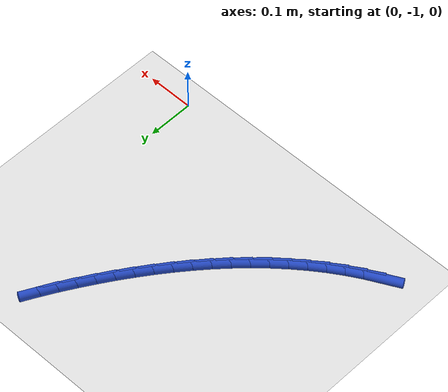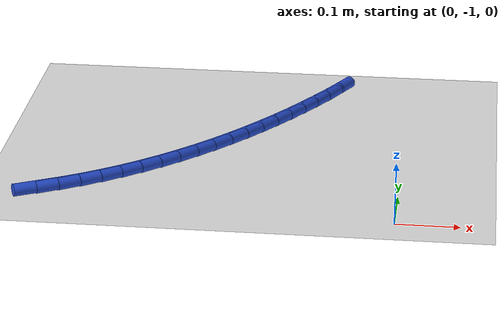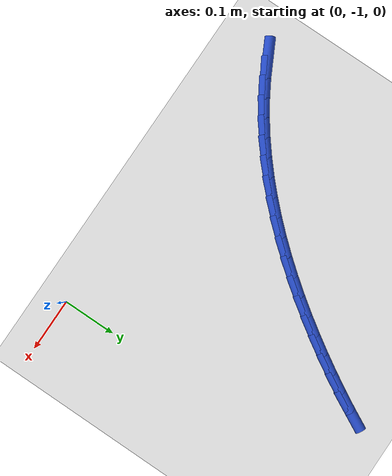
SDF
<sdf version="1.6">
 <world name="default">
  <model name="ground_plane">
   <static>1</static>
   <link name="link">
    <collision name="collision">
     <geometry><plane><normal>0 0 1</normal><size>100 100</size></plane></geometry>
     <surface><friction><ode><mu>100</mu><mu2>50</mu2></ode></friction></surface>
    </collision>
    <visual name="visual">
     <cast_shadows>0</cast_shadows>
     <geometry><plane><normal>0 0 1</normal><size>100 100</size></plane></geometry>
     <material>
      <script><uri>file://media/materials/scripts/gazebo.material</uri><name>Gazebo/WhiteGlow</name></script>
     </material>
    </visual>
   </link>
  </model>
  <model name="line">
   <link name="link_188">
    <pose>-0.5614007089672136 -0.9467634812784337 0.01 0 1.57 0.4791229240178376</pose>
    <collision name="collision">
     <geometry><cylinder><radius>0.01</radius><length>0.08</length></cylinder></geometry>
    </collision>
    <visual name="visual">
     <material>
      <script><name>Gazebo/Blue</name><uri>file://media/materials/scripts/gazebo.material</uri></script>
     </material>
     <geometry><cylinder><radius>0.01</radius><length>0.08</length></cylinder></geometry>
    </visual>
   </link>
   <link name="link_189">
    <pose>-0.529844276713611 -0.93037002334423 0.01 0 1.57 0.5312414319965021</pose>
    <collision name="collision">
     <geometry><cylinder><radius>0.01</radius><length>0.08</length></cylinder></geometry>
    </collision>
    <visual name="visual">
     <material>
      <script><name>Gazebo/Blue</name><uri>file://media/materials/scripts/gazebo.material</uri></script>
     </material>
     <geometry><cylinder><radius>0.01</radius><length>0.08</length></cylinder></geometry>
    </visual>
   </link>
   <link name="link_190">
    <pose>-0.49918736105033834 -0.9123564537605487 0.01 0 1.57 0.5809229124276968</pose>
    <collision name="collision">
     <geometry><cylinder><radius>0.01</radius><length>0.08</length></cylinder></geometry>
    </collision>
    <visual name="visual">
     <material>
      <script><name>Gazebo/Blue</name><uri>file://media/materials/scripts/gazebo.material</uri></script>
     </material>
     <geometry><cylinder><radius>0.01</radius><length>0.08</length></cylinder></geometry>
    </visual>
   </link>
   <link name="link_191">
    <pose>-0.46942108631630164 -0.8928152421919731 0.01 0 1.57 0.6281040927570009</pose>
    <collision name="collision">
     <geometry><cylinder><radius>0.01</radius><length>0.08</length></cylinder></geometry>
    </collision>
    <visual name="visual">
     <material>
      <script><name>Gazebo/Blue</name><uri>file://media/materials/scripts/gazebo.material</uri></script>
     </material>
     <geometry><cylinder><radius>0.01</radius><length>0.08</length></cylinder></geometry>
    </visual>
   </link>
   <link name="link_192">
    <pose>-0.44053656959304444 -0.8718388744110629 0.01 0 1.57 0.6727727468104069</pose>
    <collision name="collision">
     <geometry><cylinder><radius>0.01</radius><length>0.08</length></cylinder></geometry>
    </collision>
    <visual name="visual">
     <material>
      <script><name>Gazebo/Blue</name><uri>file://media/materials/scripts/gazebo.material</uri></script>
     </material>
     <geometry><cylinder><radius>0.01</radius><length>0.08</length></cylinder></geometry>
    </visual>
   </link>
   <link name="link_193">
    <pose>-0.4125249279621109 -0.8495198361903792 0.01 0 1.57 0.7149579737313152</pose>
    <collision name="collision">
     <geometry><cylinder><radius>0.01</radius><length>0.08</length></cylinder></geometry>
    </collision>
    <visual name="visual">
     <material>
      <script><name>Gazebo/Blue</name><uri>file://media/materials/scripts/gazebo.material</uri></script>
     </material>
     <geometry><cylinder><radius>0.01</radius><length>0.08</length></cylinder></geometry>
    </visual>
   </link>
   <link name="link_194">
    <pose>-0.38537727850504516 -0.825950613302483 0.01 0 1.57 0.7547211001316613</pose>
    <collision name="collision">
     <geometry><cylinder><radius>0.01</radius><length>0.08</length></cylinder></geometry>
    </collision>
    <visual name="visual">
     <material>
      <script><name>Gazebo/Blue</name><uri>file://media/materials/scripts/gazebo.material</uri></script>
     </material>
     <geometry><cylinder><radius>0.01</radius><length>0.08</length></cylinder></geometry>
    </visual>
   </link>
   <link name="link_195">
    <pose>-0.35908473830339094 -0.8012236915199342 0.01 0 1.57 0.7921473097397589</pose>
    <collision name="collision">
     <geometry><cylinder><radius>0.01</radius><length>0.08</length></cylinder></geometry>
    </collision>
    <visual name="visual">
     <material>
      <script><name>Gazebo/Blue</name><uri>file://media/materials/scripts/gazebo.material</uri></script>
     </material>
     <geometry><cylinder><radius>0.01</radius><length>0.08</length></cylinder></geometry>
    </visual>
   </link>
   <link name="link_196">
    <pose>-0.3336384244386936 -0.7754315566152951 0.01 0 1.57 0.8273383397627541</pose>
    <collision name="collision">
     <geometry><cylinder><radius>0.01</radius><length>0.08</length></cylinder></geometry>
    </collision>
    <visual name="visual">
     <material>
      <script><name>Gazebo/Blue</name><uri>file://media/materials/scripts/gazebo.material</uri></script>
     </material>
     <geometry><cylinder><radius>0.01</radius><length>0.08</length></cylinder></geometry>
    </visual>
   </link>
   <link name="link_197">
    <pose>-0.3090294539924968 -0.7486666943611255 0.01 0 1.57 0.8604063778032655</pose>
    <collision name="collision">
     <geometry><cylinder><radius>0.01</radius><length>0.08</length></cylinder></geometry>
    </collision>
    <visual name="visual">
     <material>
      <script><name>Gazebo/Blue</name><uri>file://media/materials/scripts/gazebo.material</uri></script>
     </material>
     <geometry><cylinder><radius>0.01</radius><length>0.08</length></cylinder></geometry>
    </visual>
   </link>
   <link name="link_198">
    <pose>-0.28524894404634465 -0.7210215905299865 0.01 0 1.57 0.8914691497874622</pose>
    <collision name="collision">
     <geometry><cylinder><radius>0.01</radius><length>0.08</length></cylinder></geometry>
    </collision>
    <visual name="visual">
     <material>
      <script><name>Gazebo/Blue</name><uri>file://media/materials/scripts/gazebo.material</uri></script>
     </material>
     <geometry><cylinder><radius>0.01</radius><length>0.08</length></cylinder></geometry>
    </visual>
   </link>
   <link name="link_199">
    <pose>-0.2622880116817809 -0.6925887308944386 0.01 0 1.57 0.9206461013276457</pose>
    <collision name="collision">
     <geometry><cylinder><radius>0.01</radius><length>0.08</length></cylinder></geometry>
    </collision>
    <visual name="visual">
     <material>
      <script><name>Gazebo/Blue</name><uri>file://media/materials/scripts/gazebo.material</uri></script>
     </material>
     <geometry><cylinder><radius>0.01</radius><length>0.08</length></cylinder></geometry>
    </visual>
   </link>
   <link name="link_200">
    <pose>-0.24013777398035077 -0.6634606012270432 0.01 0 1.57 0.9480555300389311</pose>
    <collision name="collision">
     <geometry><cylinder><radius>0.01</radius><length>0.08</length></cylinder></geometry>
    </collision>
    <visual name="visual">
     <material>
      <script><name>Gazebo/Blue</name><uri>file://media/materials/scripts/gazebo.material</uri></script>
     </material>
     <geometry><cylinder><radius>0.01</radius><length>0.08</length></cylinder></geometry>
    </visual>
   </link>
   <link name="link_201">
    <pose>-0.21878934802359798 -0.6337296873003608 0.01 0 1.57 0.9738125115985696</pose>
    <collision name="collision">
     <geometry><cylinder><radius>0.01</radius><length>0.08</length></cylinder></geometry>
    </collision>
    <visual name="visual">
     <material>
      <script><name>Gazebo/Blue</name><uri>file://media/materials/scripts/gazebo.material</uri></script>
     </material>
     <geometry><cylinder><radius>0.01</radius><length>0.08</length></cylinder></geometry>
    </visual>
   </link>
   <link name="link_202">
    <pose>-0.1982338508930667 -0.6034884748869525 0.01 0 1.57 0.9980274665941127</pose>
    <collision name="collision">
     <geometry><cylinder><radius>0.01</radius><length>0.08</length></cylinder></geometry>
    </collision>
    <visual name="visual">
     <material>
      <script><name>Gazebo/Blue</name><uri>file://media/materials/scripts/gazebo.material</uri></script>
     </material>
     <geometry><cylinder><radius>0.01</radius><length>0.08</length></cylinder></geometry>
    </visual>
   </link>
   <link name="link_203">
    <pose>-0.17846239967030061 -0.5728294497593778 0.01 0 1.57 1.0208052299367707</pose>
    <collision name="collision">
     <geometry><cylinder><radius>0.01</radius><length>0.08</length></cylinder></geometry>
    </collision>
    <visual name="visual">
     <material>
      <script><name>Gazebo/Blue</name><uri>file://media/materials/scripts/gazebo.material</uri></script>
     </material>
     <geometry><cylinder><radius>0.01</radius><length>0.08</length></cylinder></geometry>
    </visual>
   </link>
   <link name="link_204">
    <pose>-0.15946611143684503 -0.5418450976901994 0.01 0 1.57 1.0427815229771287</pose>
    <collision name="collision">
     <geometry><cylinder><radius>0.01</radius><length>0.08</length></cylinder></geometry>
    </collision>
    <visual name="visual">
     <material>
      <script><name>Gazebo/Blue</name><uri>file://media/materials/scripts/gazebo.material</uri></script>
     </material>
     <geometry><cylinder><radius>0.01</radius><length>0.08</length></cylinder></geometry>
    </visual>
   </link>
   <link name="link_205">
    <pose>-0.1412473202808065 -0.5106086037612536 0.01 0 1.57 1.0664342758406171</pose>
    <collision name="collision">
     <geometry><cylinder><radius>0.01</radius><length>0.08</length></cylinder></geometry>
    </collision>
    <visual name="visual">
     <material>
      <script><name>Gazebo/Blue</name><uri>file://media/materials/scripts/gazebo.material</uri></script>
     </material>
     <geometry><cylinder><radius>0.01</radius><length>0.08</length></cylinder></geometry>
    </visual>
   </link>
   <link name="link_206">
    <pose>-0.12385875657733285 -0.4791064380164272 0.01 0 1.57 1.092453588029654</pose>
    <collision name="collision">
     <geometry><cylinder><radius>0.01</radius><length>0.08</length></cylinder></geometry>
    </collision>
    <visual name="visual">
     <material>
      <script><name>Gazebo/Blue</name><uri>file://media/materials/scripts/gazebo.material</uri></script>
     </material>
     <geometry><cylinder><radius>0.01</radius><length>0.08</length></cylinder></geometry>
    </visual>
   </link>
  </model>
 </world>
</sdf>
